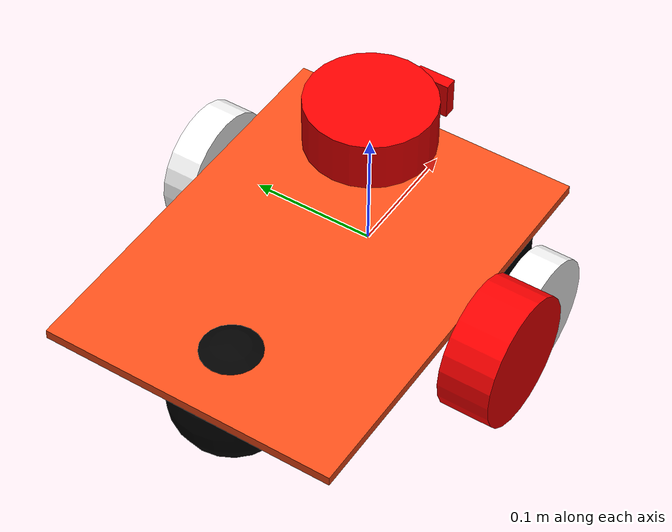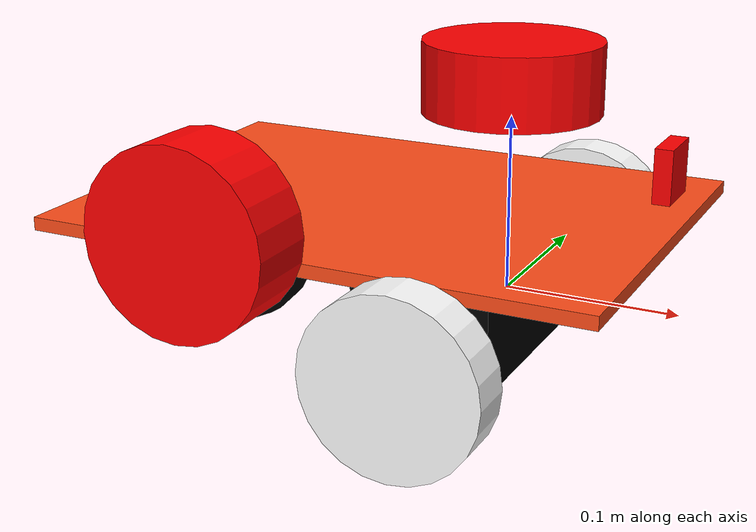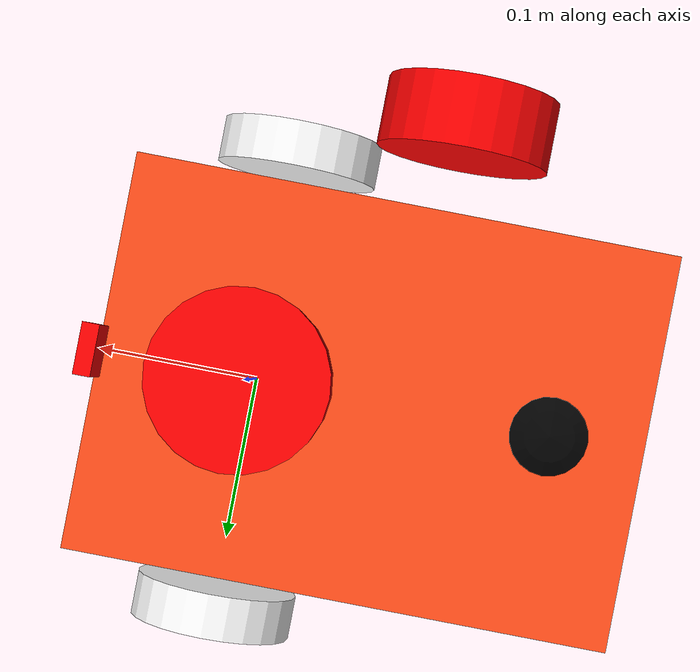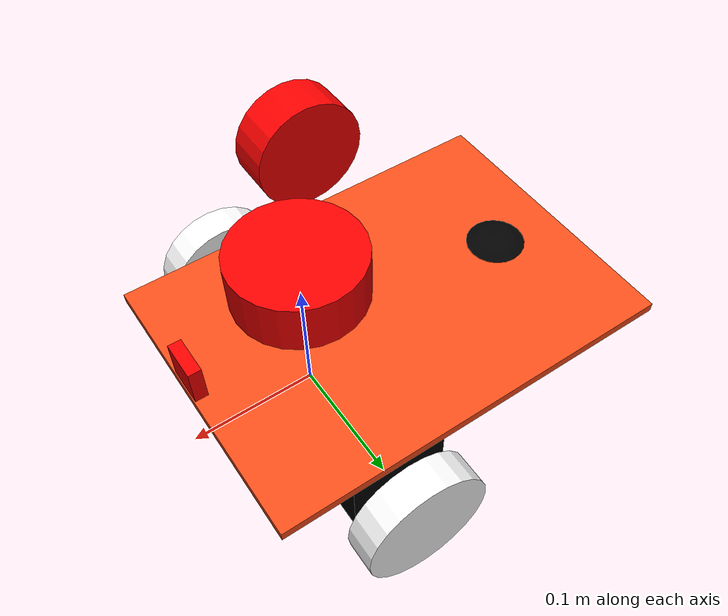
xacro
<?xml version="1.0"?>
<robot xmlns:xacro="http://www.ros.org/wiki/xacro"  name="robot">

   <xacro:include filename="robot_core.xacro"/>

   <xacro:include filename="gazebo_control.xacro"/>

   <xacro:include filename="lidar.xacro"/>

   <xacro:include filename="lidar_vertical.xacro"/>

   <xacro:include filename="camera.xacro"/>

</robot>

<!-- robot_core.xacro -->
<robot xmlns:xacro="http://www.ros.org/wiki/xacro"  name="robot">

    <xacro:include filename="inertial_macros.xacro" />

    <material name="white">
        <color rgba="1 1 1 1"/>
    </material>

    <material name="orange">
        <color rgba="1 0.3 0.1 1"/>
    </material>

    <material name="blue">
        <color rgba="0.2 0.2 1 1"/>
    </material>

    <material name="black">
        <color rgba="0 0 0 1"/>
    </material>

    <material name="red">
        <color rgba="1 0 0 1"/>
    </material>

    <link name="base_link">
    </link>

   <!-- Wheelbase -->

    <joint name="wheelbase_joint" type="fixed">
        <parent link="base_link"/>
        <child link="wheelbase"/>
        <origin xyz="0 0 0.0121"/>
    </joint>

    <link name="wheelbase">
        <visual>
            <origin xyz="0 0 0" rpy="0 0 0"/>
            <geometry>
                <box size="0.075 0.24 0.046"/>
            </geometry>
            <material name="black"/>
        </visual>
        <collision>
            <origin xyz="0 0 0" rpy="0 0 0"/>
            <geometry>
                <box size="0.075 0.24 0.046"/>
            </geometry>
        </collision>
        <xacro:inertial_box mass="0.5" x="0.075" y="0.24" z="0.046">
            <origin xyz="0 0 0" rpy="0 0 0"/>
        </xacro:inertial_box>
    </link>

    <gazebo reference="wheelbase">
        <material>Gazebo/Black</material>
    </gazebo>

    <!-- CHASSIS -->

    <joint name="chassis_joint" type="fixed">
        <parent link="wheelbase"/>
        <child link="chassis"/>
        <origin xyz="-0.0725 0 0.02685"/>
    </joint>

    <link name="chassis">
        <visual>
            <origin xyz="0 0 0" rpy="0 0 0"/>
            <geometry>
                <box size="0.33 0.24 0.0077"/>
            </geometry>
            <material name="orange"/>
        </visual>
        <collision>
            <origin xyz="0 0 0" rpy="0 0 0"/>
            <geometry>
                <box size="0.33 0.24 0.0077"/>
            </geometry>
        </collision>
        <xacro:inertial_box mass="1.027" x="0.33" y="0.24" z="0.0077">
            <origin xyz="0 0 0" rpy="0 0 0"/>
        </xacro:inertial_box>
    </link>

    <gazebo reference="chassis">
        <material>Gazebo/Orange</material>
    </gazebo>

    <!-- RIGHT WHEEL -->

    <joint name="right_wheel_joint" type="revolute">
        <parent link="base_link"/>
        <child link="right_wheel"/>
        <origin xyz="0 -0.1425 0" rpy="${pi/2} 0 0"/>
        <axis xyz="0 0 -1"/>
    </joint>

    <link name="right_wheel">
        <visual>
            <origin xyz="0 0 0" rpy="0 0 0"/>
            <geometry>
                <cylinder length="0.0265" radius="0.0495" />
            </geometry>
        <material name="white"/>
        </visual>
        <collision>
            <geometry>
                <cylinder length="0.0265" radius="0.0495" />
            </geometry>
        </collision>
        <xacro:inertial_cylinder mass="0.134" length="0.0265" radius="0.0495">
            <origin xyz="0 0 0" rpy="0 0 0"/>
        </xacro:inertial_cylinder>
    </link>

    <gazebo reference="right_wheel">
        <material>Gazebo/White</material>
    </gazebo>

	<!-- LEFT WHEEL -->
    <joint name="left_wheel_joint" type="revolute">
        <parent link="base_link"/>
        <child link="left_wheel"/>
        <origin xyz="0 0.1425 0" rpy="${pi/2} 0 0"/>
        <axis xyz="0 0 1"/>
    </joint>

    <link name="left_wheel">
        <visual>
            <origin xyz="0 0 0" rpy="0 0 0"/>
            <geometry>
                <cylinder length="0.0265" radius="0.0495" />
            </geometry>
        <material name="white"/>
        </visual>
        <collision>
            <geometry>
                <cylinder length="0.0265" radius="0.0495" />
            </geometry>
        </collision>
        <xacro:inertial_cylinder mass="0.134" length="0.0265" radius="0.0495">
            <origin xyz="0 0 0" rpy="0 0 0"/>
        </xacro:inertial_cylinder>
    </link>

    <gazebo reference="left_wheel">
        <material>Gazebo/White</material>
    </gazebo>

    <!-- CASTER WHEEL -->

    <joint name="caster_wheel_joint" type="fixed">
        <parent link="base_link"/>
        <child link="caster_wheel"/>
        <origin xyz="-0.18 0 0" rpy="0 0 0"/>
    </joint>

    <link name="caster_wheel">
        <visual>
            <geometry>
                <sphere radius="0.0495" />
            </geometry>
            <material name="black"/>
        </visual>
        <collision>
            <geometry>
                <sphere radius="0.0495" />
            </geometry>
        </collision>
        <xacro:inertial_sphere mass="0.2" radius="0.0495">
            <origin xyz="0 0 0" rpy="0 0 0"/>
        </xacro:inertial_sphere>
    </link>

    <gazebo reference="caster_wheel">
        <material>Gazebo/Black</material>
        <mu1 value="0.001"/>
        <mu2 value="0.001"/>
    </gazebo>

</robot>

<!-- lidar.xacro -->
<robot xmlns:xacro="http://www.ros.org/wiki/xacro"  name="robot">

    <joint name="laser_joint" type="fixed">
        <parent link="wheelbase"/>
        <child link="laser_frame"/>
        <origin xyz="0 0 0.11061" rpy="0 0 0"/>
    </joint>

    <link name="laser_frame">
        <visual>
            <geometry>
                <cylinder radius="0.05" length="0.04"/>
            </geometry>
            <material name="red"/>
        </visual>
        <collision>
            <geometry>
                <cylinder radius="0.05" length="0.04"/>
            </geometry>
        </collision>
        <xacro:inertial_cylinder mass="0.1" length="0.04" radius="0.04">
            <origin xyz="0 0 0" rpy="0 0 0"/>
        </xacro:inertial_cylinder>
    </link>

    <gazebo reference="laser_frame">
        <material>Gazebo/Red</material>
        <sensor name="laser" type="ray">
            <pose> 0 0 0 0 0 0 </pose>
            <visualize>false</visualize>
            <update_rate>10</update_rate>
            <ray>
                <scan>
                    <horizontal>
                        <samples>360</samples>
                        <min_angle>-3.14</min_angle>
                        <max_angle>3.14</max_angle>
                    </horizontal>
                </scan>
                <range>
                    <min>0.3</min>
                    <max>12</max>
                </range>
            </ray>
            <plugin name="laser_controller" filename="libgazebo_ros_ray_sensor.so">
                <ros>
                    <argument>~/out:=scan</argument>
                </ros>
                <output_type>sensor_msgs/LaserScan</output_type>
                <frame_name>laser_frame</frame_name>
            </plugin>
        </sensor>
    </gazebo>

</robot>

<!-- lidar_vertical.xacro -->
<robot xmlns:xacro="http://www.ros.org/wiki/xacro"  name="robot">

    <joint name="laser_joint_vertical" type="fixed">
        <parent link="chassis"/>
        <child link="laser_frame_vertical"/>
        <origin xyz="-0.0245 -0.168 0.02935" rpy="${pi/2} 0 0"/>
    </joint>

    <link name="laser_frame_vertical">
        <visual>
            <geometry>
                <cylinder radius="0.05" length="0.04"/>
            </geometry>
            <material name="red"/>
        </visual>
        <collision>
            <geometry>
                <cylinder radius="0.05" length="0.04"/>
            </geometry>
        </collision>
        <xacro:inertial_cylinder mass="0.1" length="0.04" radius="0.04">
            <origin xyz="0 0 0" rpy="0 0 0"/>
        </xacro:inertial_cylinder>
    </link>

    <gazebo reference="laser_frame_vertical">
        <material>Gazebo/Red</material>
        <sensor name="laser_vertical" type="ray">
            <pose> 0 0 0 ${pi} 0 0 </pose>
            <visualize>true</visualize>
            <update_rate>10</update_rate>
            <ray>
                <scan>
                    <horizontal>
                        <samples>360</samples>
                        <min_angle>-3.14</min_angle>
                        <max_angle>3.14</max_angle>
                    </horizontal>
                </scan>
                <range>
                    <min>0.3</min>
                    <max>12</max>
                </range>
            </ray>
            <plugin name="laser_controller" filename="libgazebo_ros_ray_sensor.so">
                <ros>
                    <argument>~/out:=scan_vertical</argument>
                </ros>
                <output_type>sensor_msgs/LaserScan</output_type>
                <frame_name>laser_frame</frame_name>
            </plugin>
        </sensor>
    </gazebo>

</robot>

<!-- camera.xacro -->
<robot xmlns:xacro="http://www.ros.org/wiki/xacro"  name="robot">

    <joint name="camera_joint" type="fixed">
        <parent link="wheelbase"/>
        <child link="camera_link"/>
        <origin xyz="0.09 0 0.0687" rpy="0 0 0"/>
    </joint>

    <link name="camera_link">
        <visual>
            <geometry>
                <box size="0.010 0.03 0.03"/>
            </geometry>
            <material name="red"/>
        </visual>
    </link>

    <joint name="camera_optical_joint" type="fixed">
        <parent link="camera_link"/>
        <child link="camera_link_optical"/>
        <origin xyz="0 0 0" rpy="${-pi/2} 0 ${-pi/2}"/>
    </joint>

    <link name="camera_link_optical">
    </link>

    <gazebo reference="camera_link">
        <material>Gazebo/Red</material>
        <sensor name="camera" type="camera">
            <pose> 0 0 0 0 0 0 </pose>
            <visualize>false</visualize>
            <update_rate>10</update_rate>
           <camera>
                <horizontal_fov>1.089</horizontal_fov>
                <image>
                    <format>R8G8B8</format>
                    <width>640</width>
                    <height>480</height>
                </image>
                <clip>
                    <near>0.05</near>
                    <far>8.0</far>
                </clip>
           </camera>
            <plugin name="camera_controller" filename="libgazebo_ros_camera.so">
                <frame_name>camera_link_optical</frame_name>
            </plugin>
        </sensor>
    </gazebo>

</robot>
